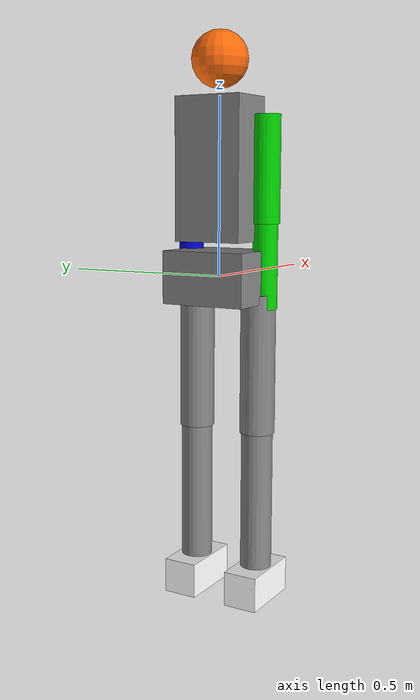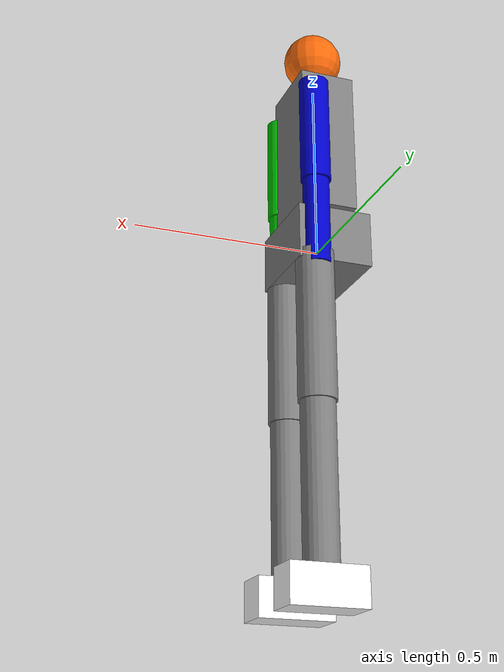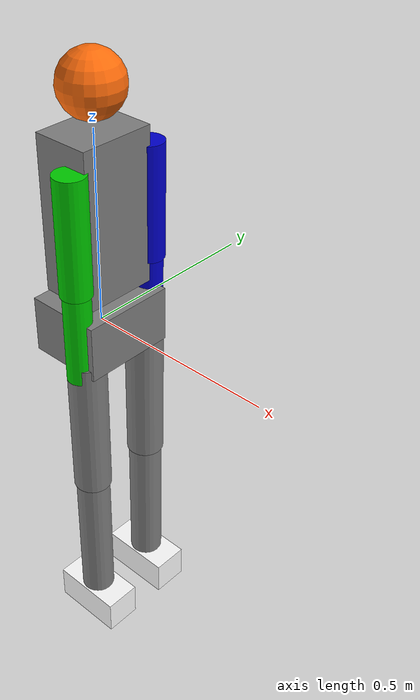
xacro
<?xml version="1.0"?>
<robot xmlns:xacro="http://www.ros.org/wiki/xacro" name="humanoid_xacro">

  <!-- Constants -->
  <xacro:property name="M_PI" value="3.1415926535897931"/>
  <xacro:property name="mass_pelvis" value="5.0"/>
  <xacro:property name="mass_torso" value="8.0"/>
  <xacro:property name="mass_head" value="1.5"/>
  <xacro:property name="mass_upper_arm" value="1.0"/>
  <xacro:property name="mass_forearm" value="0.8"/>
  <xacro:property name="mass_thigh" value="1.5"/>
  <xacro:property name="mass_shin" value="1.2"/>
  <xacro:property name="mass_foot" value="0.5"/>

  <!-- Materials -->
  <material name="black">
    <color rgba="0.0 0.0 0.0 1.0"/>
  </material>

  <material name="blue">
    <color rgba="0.0 0.0 0.8 1.0"/>
  </material>

  <material name="green">
    <color rgba="0.0 0.8 0.0 1.0"/>
  </material>

  <material name="grey">
    <color rgba="0.5 0.5 0.5 1.0"/>
  </material>

  <material name="orange">
    <color rgba="1.0 0.4235294117647059 0.0392156862745098 1.0"/>
  </material>

  <material name="red">
    <color rgba="0.8 0.0 0.0 1.0"/>
  </material>

  <material name="white">
    <color rgba="1.0 1.0 1.0 1.0"/>
  </material>

  <!-- Macro for creating a generic link -->
  <xacro:macro name="generic_link" params="name mass *visual_geometry *collision_geometry *inertial_values">
    <link name="${name}">
      <visual>
        <xacro:insert_block name="visual_geometry"/>
      </visual>

      <collision>
        <xacro:insert_block name="collision_geometry"/>
      </collision>

      <inertial>
        <xacro:insert_block name="inertial_values"/>
      </inertial>
    </link>
  </xacro:macro>

  <!-- Macro for creating a revolute joint -->
  <xacro:macro name="revolute_joint" params="name parent child xyz axis lower upper effort velocity *origin">
    <joint name="${name}" type="revolute">
      <parent link="${parent}"/>
      <child link="${child}"/>
      <xacro:insert_block name="origin"/>
      <axis xyz="${axis}"/>
      <limit lower="${lower}" upper="${upper}" effort="${effort}" velocity="${velocity}"/>
      <dynamics damping="0.1" friction="0.01"/>
    </joint>
  </xacro:macro>

  <!-- Macro for creating a humanoid limb -->
  <xacro:macro name="humanoid_limb" params="prefix parent_link x_offset y_offset z_offset side">
    <!-- Hip joint -->
    <joint name="${prefix}_hip_yaw" type="revolute">
      <parent link="${parent_link}"/>
      <child link="${prefix}_thigh"/>
      <origin xyz="${x_offset} ${y_offset} ${z_offset}" rpy="0 0 0"/>
      <axis xyz="0 0 1"/>
      <limit lower="-0.52" upper="0.52" effort="200" velocity="2.0"/>
      <dynamics damping="1.0" friction="0.1"/>
    </joint>

    <link name="${prefix}_thigh">
      <visual>
        <origin xyz="0 0 -0.2" rpy="0 0 0"/>
        <geometry>
          <cylinder radius="0.05" length="0.4"/>
        </geometry>
        <material name="grey"/>
      </visual>

      <collision>
        <origin xyz="0 0 -0.2" rpy="0 0 0"/>
        <geometry>
          <cylinder radius="0.05" length="0.4"/>
        </geometry>
      </collision>

      <inertial>
        <origin xyz="0 0 -0.2" rpy="0 0 0"/>
        <mass value="${mass_thigh}"/>
        <inertia ixx="0.015" ixy="0" ixz="0" iyy="0.015" iyz="0" izz="0.002"/>
      </inertial>
    </link>

    <!-- Knee joint -->
    <joint name="${prefix}_knee" type="revolute">
      <parent link="${prefix}_thigh"/>
      <child link="${prefix}_shin"/>
      <origin xyz="0 0 -0.4" rpy="0 0 0"/>
      <axis xyz="0 1 0"/>
      <limit lower="0" upper="2.35" effort="300" velocity="1.5"/>
      <dynamics damping="0.5" friction="0.05"/>
    </joint>

    <link name="${prefix}_shin">
      <visual>
        <origin xyz="0 0 -0.2" rpy="0 0 0"/>
        <geometry>
          <cylinder radius="0.045" length="0.4"/>
        </geometry>
        <material name="grey"/>
      </visual>

      <collision>
        <origin xyz="0 0 -0.2" rpy="0 0 0"/>
        <geometry>
          <cylinder radius="0.045" length="0.4"/>
        </geometry>
      </collision>

      <inertial>
        <origin xyz="0 0 -0.2" rpy="0 0 0"/>
        <mass value="${mass_shin}"/>
        <inertia ixx="0.012" ixy="0" ixz="0" iyy="0.012" iyz="0" izz="0.0015"/>
      </inertial>
    </link>

    <!-- Ankle joint -->
    <joint name="${prefix}_ankle_pitch" type="revolute">
      <parent link="${prefix}_shin"/>
      <child link="${prefix}_foot"/>
      <origin xyz="0 0 -0.4" rpy="0 0 0"/>
      <axis xyz="0 1 0"/>
      <limit lower="-0.52" upper="0.52" effort="100" velocity="1.0"/>
      <dynamics damping="0.2" friction="0.02"/>
    </joint>

    <link name="${prefix}_foot">
      <visual>
        <origin xyz="0 0 -0.05" rpy="0 0 0"/>
        <geometry>
          <box size="0.2 0.1 0.1"/>
        </geometry>
        <material name="white"/>
      </visual>

      <collision>
        <origin xyz="0 0 -0.05" rpy="0 0 0"/>
        <geometry>
          <box size="0.2 0.1 0.1"/>
        </geometry>
      </collision>

      <inertial>
        <origin xyz="0 0 -0.05" rpy="0 0 0"/>
        <mass value="${mass_foot}"/>
        <inertia ixx="0.001" ixy="0" ixz="0" iyy="0.002" iyz="0" izz="0.002"/>
      </inertial>
    </link>
  </xacro:macro>

  <!-- Macro for creating an arm -->
  <xacro:macro name="humanoid_arm" params="prefix parent_link x_offset y_offset z_offset">
    <!-- Shoulder joint -->
    <joint name="${prefix}_shoulder_yaw" type="revolute">
      <parent link="${parent_link}"/>
      <child link="${prefix}_upper_arm"/>
      <origin xyz="${x_offset} ${y_offset} ${z_offset}" rpy="0 0 0"/>
      <axis xyz="0 0 1"/>
      <limit lower="-1.57" upper="1.57" effort="100" velocity="2.5"/>
      <dynamics damping="0.2" friction="0.05"/>
    </joint>

    <link name="${prefix}_upper_arm">
      <visual>
        <origin xyz="0 0 -0.15" rpy="0 0 0"/>
        <geometry>
          <cylinder radius="0.04" length="0.3"/>
        </geometry>
        <material name="${prefix == 'left' and 'blue' or 'green'}"/>
      </visual>

      <collision>
        <origin xyz="0 0 -0.15" rpy="0 0 0"/>
        <geometry>
          <cylinder radius="0.04" length="0.3"/>
        </geometry>
      </collision>

      <inertial>
        <origin xyz="0 0 -0.15" rpy="0 0 0"/>
        <mass value="${mass_upper_arm}"/>
        <inertia ixx="0.005" ixy="0" ixz="0" iyy="0.005" iyz="0" izz="0.001"/>
      </inertial>
    </link>

    <!-- Elbow joint -->
    <joint name="${prefix}_elbow" type="revolute">
      <parent link="${prefix}_upper_arm"/>
      <child link="${prefix}_forearm"/>
      <origin xyz="0 0 -0.3" rpy="0 0 0"/>
      <axis xyz="0 1 0"/>
      <limit lower="0" upper="2.5" effort="80" velocity="3.0"/>
      <dynamics damping="0.1" friction="0.02"/>
    </joint>

    <link name="${prefix}_forearm">
      <visual>
        <origin xyz="0 0 -0.12" rpy="0 0 0"/>
        <geometry>
          <cylinder radius="0.035" length="0.24"/>
        </geometry>
        <material name="${prefix == 'left' and 'blue' or 'green'}"/>
      </visual>

      <collision>
        <origin xyz="0 0 -0.12" rpy="0 0 0"/>
        <geometry>
          <cylinder radius="0.035" length="0.24"/>
        </geometry>
      </collision>

      <inertial>
        <origin xyz="0 0 -0.12" rpy="0 0 0"/>
        <mass value="${mass_forearm}"/>
        <inertia ixx="0.003" ixy="0" ixz="0" iyy="0.003" iyz="0" izz="0.0005"/>
      </inertial>
    </link>
  </xacro:macro>

  <!-- Root link: pelvis -->
  <link name="pelvis">
    <visual>
      <origin xyz="0 0 0" rpy="0 0 0"/>
      <geometry>
        <box size="0.2 0.25 0.15"/>
      </geometry>
      <material name="grey"/>
    </visual>

    <collision>
      <origin xyz="0 0 0" rpy="0 0 0"/>
      <geometry>
        <box size="0.2 0.25 0.15"/>
      </geometry>
    </collision>

    <inertial>
      <origin xyz="0 0 0" rpy="0 0 0"/>
      <mass value="${mass_pelvis}"/>
      <inertia ixx="0.05" ixy="0" ixz="0" iyy="0.04" iyz="0" izz="0.03"/>
    </inertial>
  </link>

  <!-- Spine joint -->
  <joint name="torso_joint" type="revolute">
    <parent link="pelvis"/>
    <child link="torso"/>
    <origin xyz="0 0 0.1" rpy="0 0 0"/>
    <axis xyz="0 0 1"/>
    <limit lower="-0.5" upper="0.5" effort="200" velocity="1.5"/>
    <dynamics damping="0.5" friction="0.1"/>
  </joint>

  <link name="torso">
    <visual>
      <origin xyz="0 0 0.2" rpy="0 0 0"/>
      <geometry>
        <box size="0.15 0.2 0.4"/>
      </geometry>
      <material name="grey"/>
    </visual>

    <collision>
      <origin xyz="0 0 0.2" rpy="0 0 0"/>
      <geometry>
        <box size="0.15 0.2 0.4"/>
      </geometry>
    </collision>

    <inertial>
      <origin xyz="0 0 0.2" rpy="0 0 0"/>
      <mass value="${mass_torso}"/>
      <inertia ixx="0.15" ixy="0" ixz="0" iyy="0.12" iyz="0" izz="0.08"/>
    </inertial>
  </link>

  <!-- Neck joint -->
  <joint name="neck_joint" type="revolute">
    <parent link="torso"/>
    <child link="head"/>
    <origin xyz="0 0 0.45" rpy="0 0 0"/>
    <axis xyz="0 1 0"/>
    <limit lower="-0.5" upper="0.5" effort="20" velocity="2.0"/>
    <dynamics damping="0.1" friction="0.05"/>
  </joint>

  <link name="head">
    <visual>
      <origin xyz="0 0 0.05" rpy="0 0 0"/>
      <geometry>
        <sphere radius="0.08"/>
      </geometry>
      <material name="orange"/>
    </visual>

    <collision>
      <origin xyz="0 0 0.05" rpy="0 0 0"/>
      <geometry>
        <sphere radius="0.08"/>
      </geometry>
    </collision>

    <inertial>
      <origin xyz="0 0 0.05" rpy="0 0 0"/>
      <mass value="${mass_head}"/>
      <inertia ixx="0.004" ixy="0" ixz="0" iyy="0.004" iyz="0" izz="0.004"/>
    </inertial>
  </link>

  <!-- Instantiate left and right limbs using macros -->
  <xacro:humanoid_limb prefix="left_leg" parent_link="pelvis" x_offset="0.05" y_offset="0.1" z_offset="-0.05" side="left"/>
  <xacro:humanoid_limb prefix="right_leg" parent_link="pelvis" x_offset="0.05" y_offset="-0.1" z_offset="-0.05" side="right"/>
  <xacro:humanoid_arm prefix="left" parent_link="torso" x_offset="0.05" y_offset="0.12" z_offset="0.35"/>
  <xacro:humanoid_arm prefix="right" parent_link="torso" x_offset="0.05" y_offset="-0.12" z_offset="0.35"/>

  <!-- Gazebo plugins -->
  <gazebo>
    <plugin name="gazebo_ros_control" filename="libgazebo_ros_control.so">
      <robotNamespace>/humanoid</robotNamespace>
    </plugin>
  </gazebo>

</robot>
